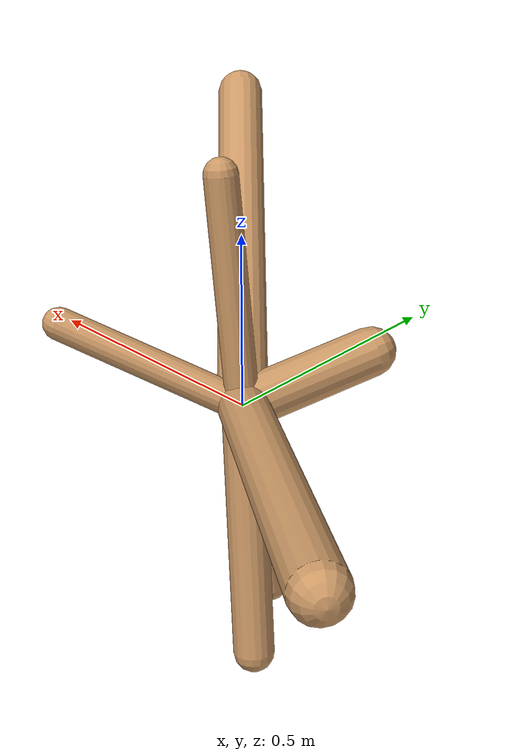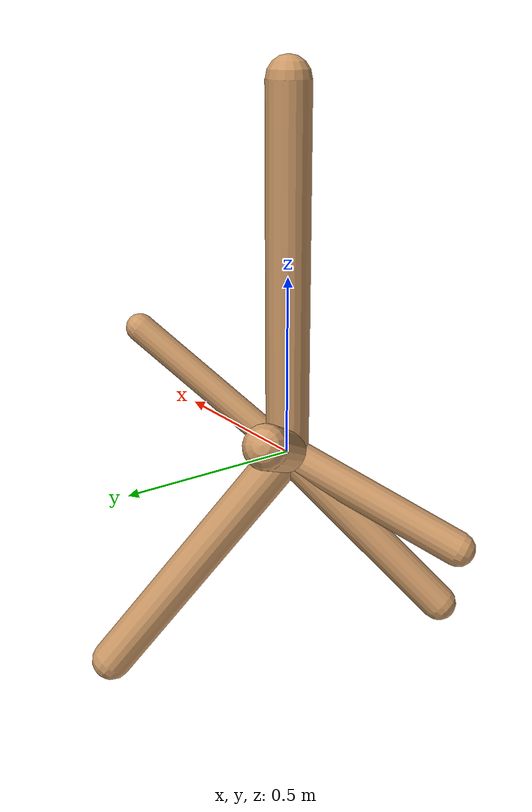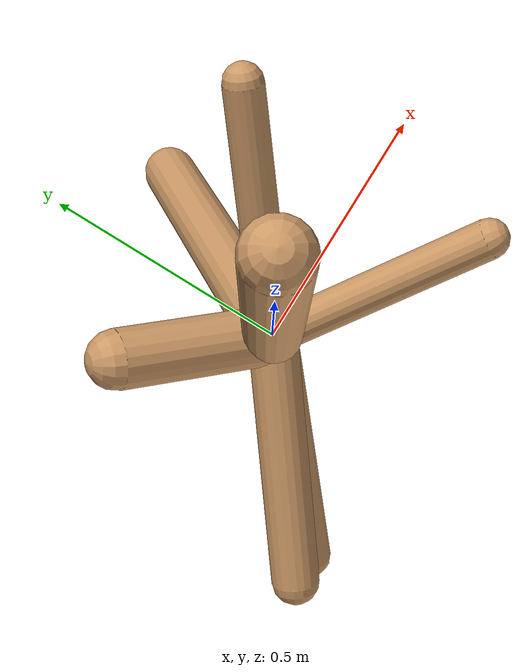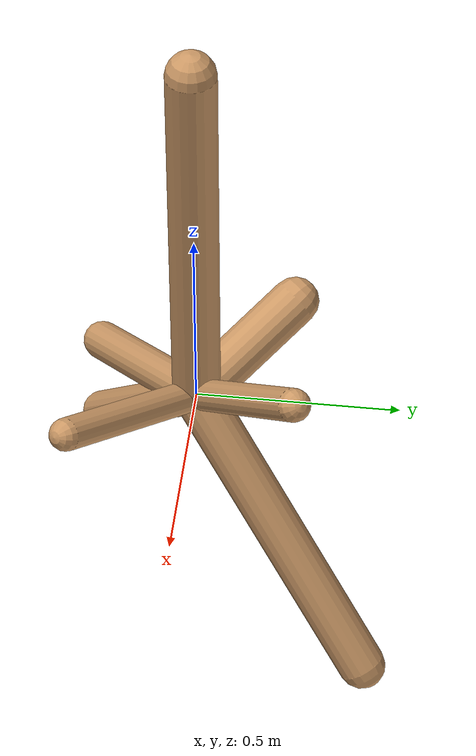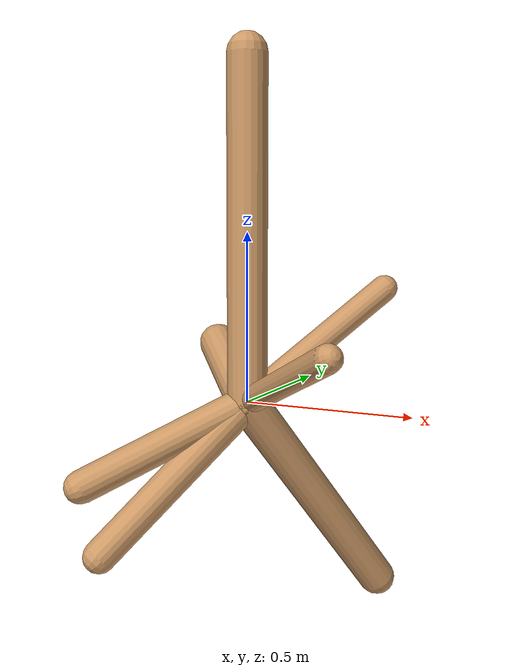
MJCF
<!--
                    joint_number: 6
                    -->
                    <mujoco model="randomrobot">
                        <compiler angle="degree" coordinate="global" inertiafromgeom="true"/>
                        <default>
                        <joint armature="0.01" damping=".1" limited="true"/>
                        <geom conaffinity="0" condim="3" contype="1" density="1000" friction="0.8 .1 .1" rgba="0.8 0.6 .4 1"/>
                        </default>
                        <option integrator="RK4" timestep="0.002"/>
                        <worldbody>
                    <body name='torso' pos='0.00 0.00 1.03'><geom fromto='0 0 0 0.00 0.00 1.00' name='torso_geom' size='0.06' type='capsule'/><inertial mass='0.3'/><body name='L0_D1' pos='0.00 0.00 0.20'><joint axis='0 1 0' name='L0_D1_joint' pos='0 0 0' range='75.90 154.08' type='hinge'/><geom fromto='0 0 0 -0.21 0.22 0.14' name='L0_D1_geom' size='0.06' type='capsule'/><inertial mass='0.3'/><body name='L1_D0' pos='-0.05 0.05 0.03'><joint axis='0 1 0' name='L1_D0_joint' pos='0 0 0' range='32.13 71.63' type='hinge'/><geom fromto='0 0 0 0.27 0.45 -0.66' name='L1_D0_geom' size='0.06' type='capsule'/><inertial mass='0.3'/></body></body><body name='L2_D1' pos='0.00 0.00 0.89'><joint axis='1 0 0' name='L2_D1_joint' pos='0 0 0' range='137.85 141.76' type='hinge'/><geom fromto='0 0 0 -0.39 -0.30 -0.23' name='L2_D1_geom' size='0.05' type='capsule'/><inertial mass='0.3'/><body name='L3_D0' pos='-0.38 -0.29 -0.22'><joint axis='0 1 0' name='L3_D0_joint' pos='0 0 0' range='127.23 149.24' type='hinge'/><geom fromto='0 0 0 -0.33 -0.30 -0.43' name='L3_D0_geom' size='0.05' type='capsule'/><inertial mass='0.3'/></body></body><body name='L4_D1' pos='0.00 0.00 0.11'><joint axis='0 1 0' name='L4_D1_joint' pos='0 0 0' range='34.29 83.16' type='hinge'/><geom fromto='0 0 0 0.33 0.27 0.33' name='L4_D1_geom' size='0.04' type='capsule'/><inertial mass='0.3'/></body><body name='L5_D1' pos='0.00 0.00 1.00'><joint axis='0 0 1' name='L5_D1_joint' pos='0 0 0' range='79.45 158.17' type='hinge'/><geom fromto='0 0 0 0.35 -0.26 0.19' name='L5_D1_geom' size='0.04' type='capsule'/><inertial mass='0.3'/></body></body>
                        </worldbody>
                    </mujoco>
